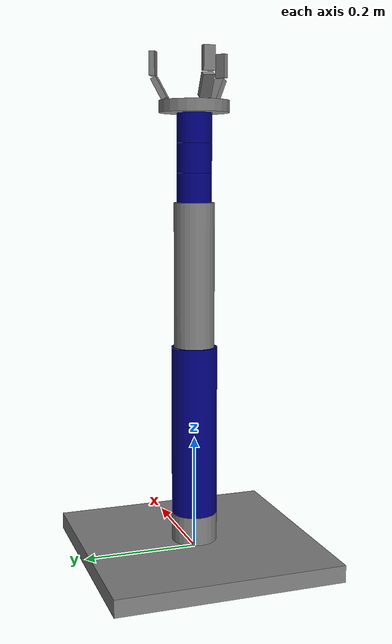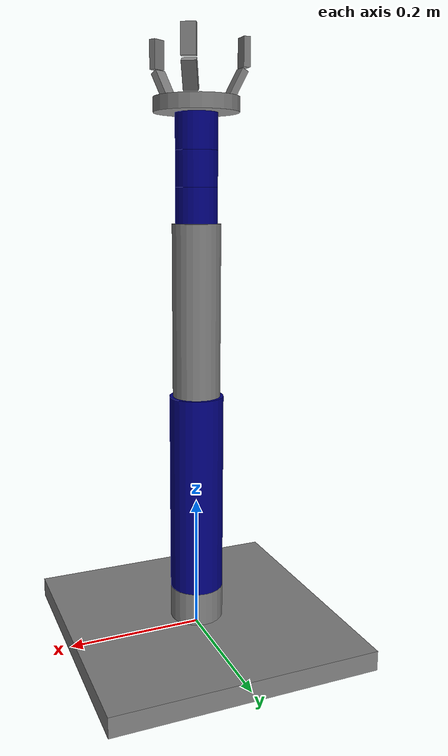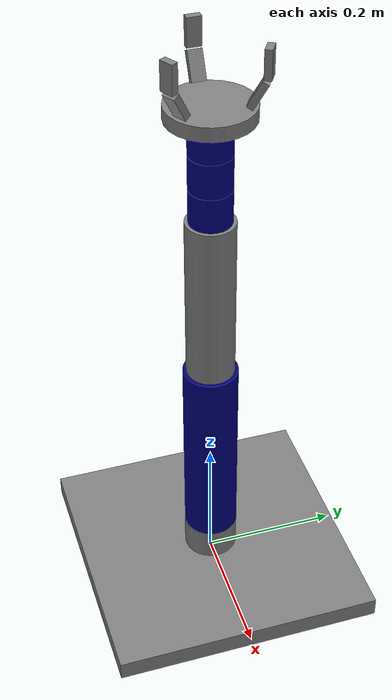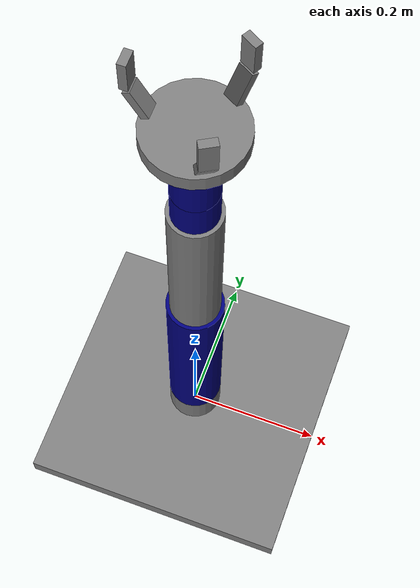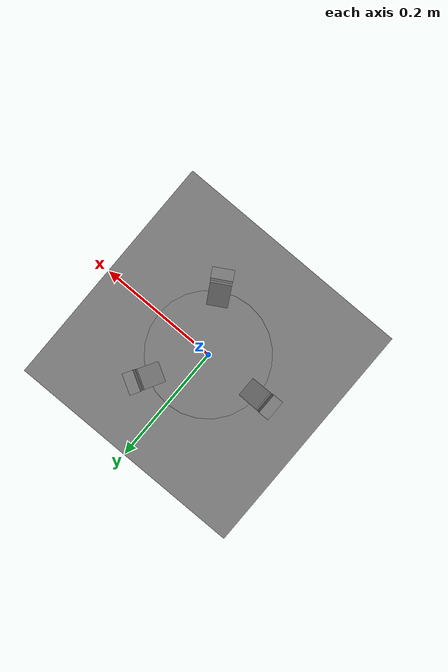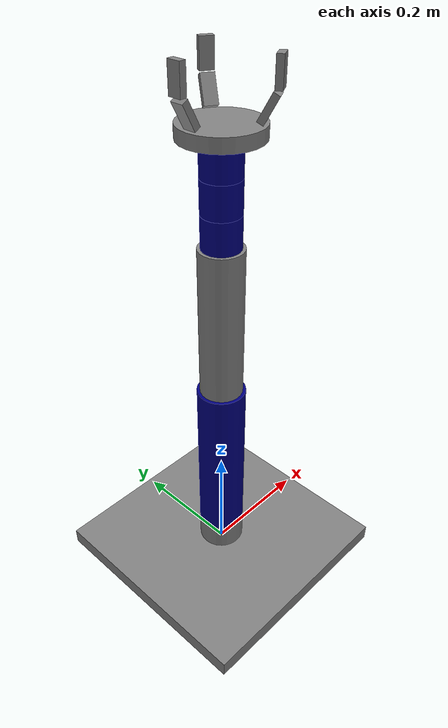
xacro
<?xml version="1.0"?>
<robot xmlns:xacro="http://www.ros.org/wiki/xacro" name="pap_arm">
    <xacro:arg name="initial_positions_file" default="initial_positions.yaml" />

    <!-- Import pap_arm urdf file -->
    <xacro:include filename="$(find pap_arm)/urdf/pap_arm.xacro" />

    <!-- Import control_xacro -->
    <xacro:include filename="pap_arm.ros2_control.xacro" />

    <xacro:pap_arm_ros2_control name="FakeSystem" initial_positions_file="$(arg initial_positions_file)"/>

</robot>

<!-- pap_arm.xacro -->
<robot name="pap_arm" xmlns:xacro="http://www.ros.org/wiki/xacro">
    <xacro:include filename="$(find pap_arm)/urdf/common_properties.urdf.xacro"/>
    <xacro:include filename="$(find pap_arm)/urdf/pap_arm_links.xacro"/>
    <xacro:include filename="$(find pap_arm)/urdf/pap_arm_gazebo.xacro"/>
    <xacro:include filename="$(find pap_arm)/urdf/claw.xacro"/>
    <xacro:include filename="$(find pap_arm)/urdf/pap_arm.ros2_control.xacro"/>

    <joint name="end_effector_gripper" type="fixed">
        <origin xyz="0.0 0.0 ${claw_base_length/2.0}" rpy="0.0 0.0 0.0"/>
        <parent link="end_effector"/>
        <child link="claw_base"/>

    </joint>
</robot>

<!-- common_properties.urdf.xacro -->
<robot  xmlns:xacro="http://www.ros.org/wiki/xacro">

    <material name="green">
        <color rgba="0 0.5 0 1" />
    </material>

    <material name="red">
        <color rgba="0.5 0 0 1" />
    </material>

    <material name="orange">
        <color rgba="1 0.6 0 1" />
    </material>

    <material name="grey">
        <color rgba="0.5 0.5 0.5 1" />
    </material>

    <material name="blue">
        <color rgba="0 0 0.5 1" />
    </material>

    <xacro:macro name="box_inertia" params="m x y z o_xyz o_rpy" >
        <inertial>
            <mass value="${m}" />
            <origin xyz="${o_xyz}" rpy="${o_rpy}" />
            <inertia
                ixx="${(1/12.0)*m*(y**2 + z**2)}"  ixy="0.0"  ixz="0.0"
                iyy="${(1/12.0)*m*(x**2 + z**2)}"  iyz="0.0"
                izz="${(1/12.0)*m*(x**2 + y**2)}"
            />
        </inertial>
    </xacro:macro>

    <xacro:macro name="solid_cylinder_inertia" params="m r h o_xyz o_rpy" >
        <inertial>
            <mass value="${m}" />
            <origin xyz="${o_xyz}" rpy="${o_rpy}" />
            <inertia
                ixx="${(1/12.0)*m*(3*r**2 + h**2)}"  ixy="0.0"  ixz="0.0"
                iyy="${(1/12.0)*m*(3*r**2 + h**2)}"  iyz="0.0"
                izz="${(1/2.0)*m*(r**2)}"
            />
        </inertial>
    </xacro:macro>

    <xacro:macro name="solid_sphere_inertia" params="m r o_xyz o_rpy" >
        <inertial>
            <mass value="${m}" />
            <origin xyz="${o_xyz}" rpy="${o_rpy}" />
            <inertia
                ixx="${(2/5.0)*m*(r**2)}"  ixy="0.0"  ixz="0.0"
                iyy="${(2/5.0)*m*(r**2)}"  iyz="0.0"
                izz="${(2/5.0)*m*(r**2)}"
            />
        </inertial>
    </xacro:macro>
</robot>

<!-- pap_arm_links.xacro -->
<robot  xmlns:xacro="http://www.ros.org/wiki/xacro">
    <!-- XACRO definitions -->
    <xacro:property name="base_length" value="0.4"/>
    <xacro:property name="base_width" value="0.4"/>
    <xacro:property name="base_height" value="0.03"/>

    <xacro:property name="link1_length" value="0.05"/>
    <xacro:property name="link1_radius" value="0.04"/>

    <xacro:property name="link2_length" value="0.3"/>
    <xacro:property name="link2_radius" value="0.04"/>

    <xacro:property name="link3_length" value="0.25"/>
    <xacro:property name="link3_radius" value="0.035"/>

    <xacro:property name="link4_length" value="0.05"/>
    <xacro:property name="link4_radius" value="0.03"/>

    <xacro:property name="link5_length" value="0.05"/>
    <xacro:property name="link5_radius" value="0.03"/>

    <xacro:property name="link6_length" value="0.05"/>
    <xacro:property name="link6_radius" value="0.03"/>

    <xacro:property name="end_effector_radius" value="0.02"/>

    <!-- LINKS -->

    <link name="base_link">
        <visual>
            <geometry>
                <box size="${base_length} ${base_width} ${base_height}"/>
            </geometry>
            <origin xyz="0 0 0" rpy="0 0 0"/>
            <material name="grey"/>
        </visual>
        <collision>
            <geometry>
                <box size="${base_length} ${base_width} ${base_height}"/>
            </geometry>
            <origin xyz="0 0 0" rpy="0 0 0"/>
        </collision>
    </link>

    <xacro:macro name="cylindrical_link" params="name length radius mass color">
        <link name="${name}">
            <visual>
                <geometry>
                    <cylinder length="${length}" radius="${radius}"/>
                </geometry>
                <origin xyz="0 0 ${length/2}" rpy="0 0 0"/>
                <material name="${color}"/>
            </visual>
            <collision>
                <geometry>
                    <box size="${radius*2} ${radius*2} ${length}"/>
                </geometry>
                <origin xyz="0 0 ${length/2}" rpy="0 0 0"/>
            </collision>
        </link>
    </xacro:macro>

    <xacro:cylindrical_link name="link1" length="${link1_length}" radius="${link1_radius}" mass="1.5" color="grey"/>
    <xacro:cylindrical_link name="link2" length="${link2_length}" radius="${link2_radius}" mass="1.0" color="blue"/>
    <xacro:cylindrical_link name="link3" length="${link3_length}" radius="${link3_radius}" mass="0.8" color="grey"/>
    <xacro:cylindrical_link name="link4" length="${link4_length}" radius="${link4_radius}" mass="0.6" color="blue"/>
    <xacro:cylindrical_link name="link5" length="${link5_length}" radius="${link5_radius}" mass="0.4" color="blue"/>
    <xacro:cylindrical_link name="link6" length="${link6_length}" radius="${link6_radius}" mass="0.2" color="blue"/>

    <link name="end_effector">

    </link>

    <!-- JOINTS -->

    <joint name="base_link_link1" type="revolute">
        <parent link="base_link"/>
        <child link="link1"/>
        <origin xyz="0 0 ${base_height/2.0}" rpy="0 0 0"/>
        <axis xyz="0 0 1"/>
        <limit lower="-3.14" upper="3.14" effort="10.0" velocity="1.0"/>
    </joint>

    <joint name="link1_link2" type="revolute">
        <parent link="link1"/>
        <child link="link2"/>
        <origin xyz="0 0 ${link1_length}" rpy="0 0 0"/>
        <axis xyz="0 1 0"/>
        <limit lower="-1.57" upper="1.57" effort="10.0" velocity="1.0"/>
    </joint>

    <joint name="link2_link3" type="revolute">
        <parent link="link2"/>
        <child link="link3"/>
        <origin xyz="0 0 ${link2_length}" rpy="0 0 0"/>
        <axis xyz="0 1 0"/>
        <limit lower="-2.62" upper="2.62" effort="10.0" velocity="1.0"/>
    </joint>

    <joint name="link3_link4" type="revolute">
        <parent link="link3"/>
        <child link="link4"/>
        <origin xyz="0 0 ${link3_length}" rpy="0 0 0"/>
        <axis xyz="0 0 1"/>
        <limit lower="-3.14" upper="3.14" effort="10.0" velocity="1.0"/>
    </joint>

    <joint name="link4_link5" type="revolute">
        <parent link="link4"/>
        <child link="link5"/>
        <origin xyz="0 0 ${link4_length}" rpy="0 0 0"/>
        <axis xyz="0 1 0"/>
        <limit lower="-2.35" upper="2.35" effort="10.0" velocity="1.0"/>
    </joint>

    <joint name="link5_link6" type="revolute">
        <parent link="link5"/>
        <child link="link6"/>
        <origin xyz="0 0 ${link5_length}" rpy="0 0 0"/>
        <axis xyz="1 0 0"/>
        <limit lower="-3.14" upper="3.14" effort="10.0" velocity="1.0"/>
    </joint>

    <joint name="link6_end_effector" type="continuous">
        <parent link="link6"/>
        <child link="end_effector"/>
        <origin xyz="0 0 ${link6_length}" rpy="0 0 0"/>
        <axis xyz="0 0 1"/>
    </joint>

</robot>

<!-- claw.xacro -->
<robot  xmlns:xacro="http://www.ros.org/wiki/xacro">
    <!-- XACRO definitions -->
    <xacro:property name="claw_base_length" value="0.02"/>
    <xacro:property name="claw_base_radius" value="0.06"/>

    <xacro:property name="claw_finger_length" value="0.01"/>
    <xacro:property name="claw_finger_width" value="0.02"/>
    <xacro:property name="claw_finger_height" value="0.04"/>

    <xacro:property name="claw_finger_offset" value="0.05"/>

    <!-- XACRO FOR CLAWS -->
    <xacro:macro name="claw_finger" params="name">

        <!-- FINGER LINK 1 -->
        <link name="${name}_claw_finger">
            <visual>
                <origin xyz="0 0.0 ${claw_finger_height/2.0}" rpy="0.0 0.0 0.0"/>
                <geometry>
                    <box size="${claw_finger_length} ${claw_finger_width} ${claw_finger_height}"/>
                </geometry>
                <material name="grey"/>
            </visual>

            <collision>
                <origin xyz="0 0.0 ${claw_finger_height/2.0}" rpy="0.0 0.0 0.0"/>
                <geometry>
                    <box size="${claw_finger_length} ${claw_finger_width} ${claw_finger_height}"/>
                </geometry>
            </collision>

        </link>
        <!-- FINGER LINK 2 -->
        <link name="gripper_claw_${name}">
            <visual>
                <origin xyz="0.0 0.0 ${claw_finger_height/2.0}" rpy="0.0 0.0 0.0"/>
                <geometry>
                    <box size="${claw_finger_length} ${claw_finger_width} ${claw_finger_height}"/>
                </geometry>
                <material name="grey"/>

            </visual>

            <collision>
                <origin xyz="0.0 0.0 ${claw_finger_height/2.0}" rpy="0.0 0.0 0.0"/>
                <geometry>
                    <box size="${claw_finger_length} ${claw_finger_width} ${claw_finger_height}"/>
                </geometry>
            </collision>

        </link>

        <joint name="finger_claw_${name}" type="fixed">
            <origin xyz="0 0 ${claw_finger_height*1.1}" rpy="0 0.5 0"/>
            <parent link="${name}_claw_finger"/>
            <child link="gripper_claw_${name}"/>
        </joint>
    </xacro:macro>

    <link name="claw_base">
        <visual >
            <origin xyz="0.0 0.0 0.0" rpy="0.0 0.0 0.0"/>
            <geometry>
                <cylinder radius="${claw_base_radius}" length="${claw_base_length}"/>
            </geometry>
            <material name="grey"/>
        </visual>
        <collision>
            <origin xyz="0.0 0.0 0.0" rpy="0.0 0.0 0.0"/>
            <geometry>
                <box size="${2*claw_base_radius} ${2*claw_base_radius} ${claw_base_length}"/>
            </geometry>
        </collision>
    </link>

    <xacro:claw_finger name="one"/>
    <xacro:claw_finger name="two"/>
    <xacro:claw_finger name="three"/>

    <joint name="claw_base_finger_one" type="revolute">
        <origin xyz="-${claw_finger_offset} 0.0 ${claw_base_length/1.5}" rpy="0.0 -0.5  0.0"/>
        <parent link="claw_base"/>
        <child link="one_claw_finger"/>
        <axis xyz="0.0 1.0 0.0"/>
        <limit lower="0" upper="0.75" effort="10.0" velocity="10.0"/>

    </joint>

    <joint name="claw_base_finger_two" type="revolute">
        <origin xyz="${claw_finger_offset*0.5} ${0.866*claw_finger_offset} ${claw_base_length/1.5}" rpy="0.0  -0.5 -2.09"/>
        <parent link="claw_base"/>
        <child link="two_claw_finger"/>
        <axis xyz="0.0 1.0 0.0"/>
        <limit lower="0.0" upper="1.2" effort="10.0" velocity="10.0"/>
        <mimic joint="claw_base_finger_one" multiplier="1.0"/>

    </joint>

    <joint name="claw_base_finger_three" type="revolute">
        <origin xyz="${claw_finger_offset*0.5} ${-0.866*claw_finger_offset} ${claw_base_length/1.5}" rpy="0.0 -0.5 2.09"/>
        <parent link="claw_base"/>
        <child link="three_claw_finger"/>
        <axis xyz="0.0 1.0 0.0"/>
        <limit lower="0.0" upper="1.2" effort="10.0" velocity="10.0"/>
        <mimic joint="claw_base_finger_one" multiplier="1.0"/>

    </joint>

</robot>
